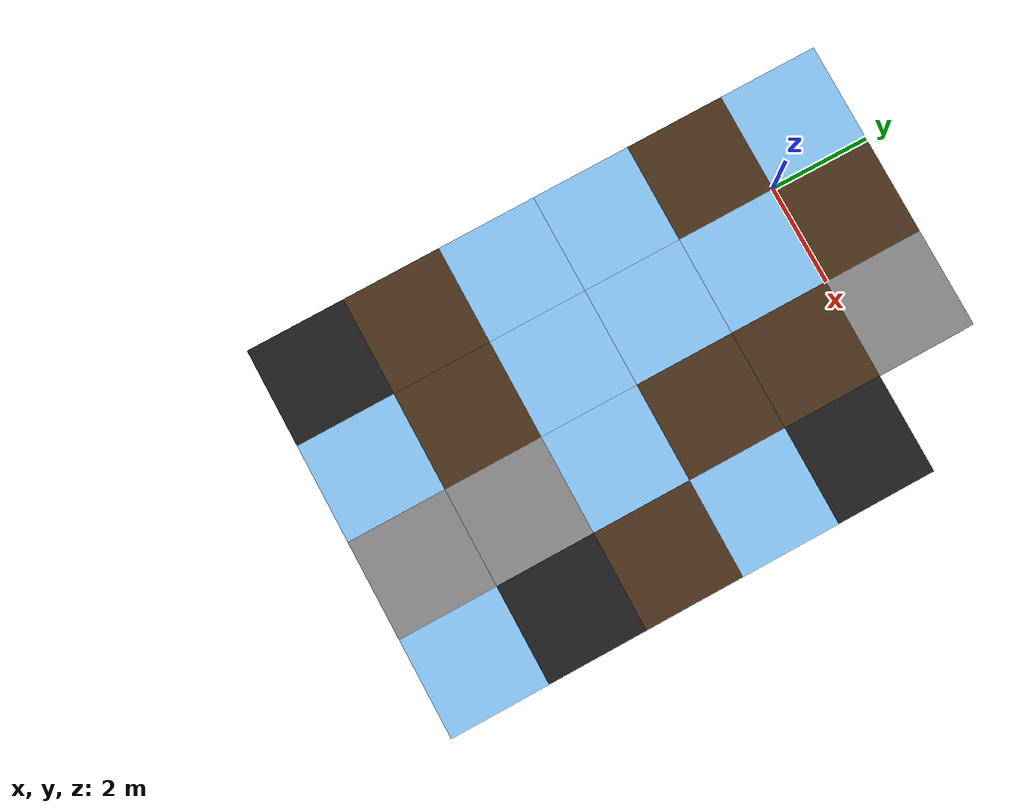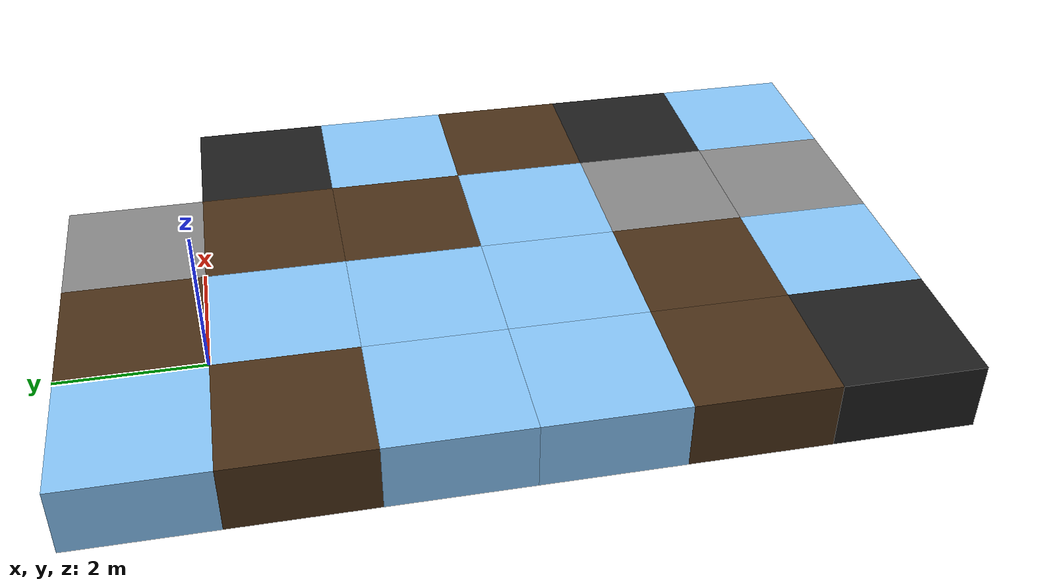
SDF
<sdf version="1.5">
 <world name="squares_example">
  <model name="tile_15_11">
   <static>true</static>
   <pose>-1.000 -9.000 -0.500 0 0 0</pose>
   <link name="link">
    <collision name="col">
     <geometry><box><size>2.0 2.0 1.0</size></box></geometry>
     <surface>
      <friction>
       <ode><mu>0.4</mu><mu2>0.15</mu2><fdir1>1 0 0</fdir1><slip1>0.0</slip1><slip2>0.0</slip2></ode>
       <torsional>
        <coefficient>0.03</coefficient>
        <use_patch_radius>false</use_patch_radius>
        <surface_radius>0.12</surface_radius>
        <ode><slip>0.0</slip></ode>
       </torsional>
      </friction>
      <bounce><restitution_coefficient>0.0</restitution_coefficient><threshold>0.1</threshold></bounce>
      <contact>
       <ode><kp>1000000000.0</kp><kd>1000000.0</kd><max_vel>0.01</max_vel><min_depth>0.0</min_depth></ode>
      </contact>
     </surface>
    </collision>
    <visual name="visual">
     <geometry><box><size>2.0 2.0 1.0</size></box></geometry>
     <material>
      <diffuse>0.12 0.12 0.12 1</diffuse>
      <ambient>0 0 0 0</ambient>
      <specular>0 0 0 1</specular>
      <emissive>0 0 0 1</emissive>
     </material>
    </visual>
   </link>
  </model>
  <model name="tile_16_11">
   <static>true</static>
   <pose>1.000 -9.000 -0.500 0 0 0</pose>
   <link name="link">
    <collision name="col">
     <geometry><box><size>2.0 2.0 1.0</size></box></geometry>
     <surface>
      <friction>
       <ode><mu>0.03</mu><mu2>0.02</mu2><fdir1>1 0 0</fdir1><slip1>0.03</slip1><slip2>0.03</slip2></ode>
       <torsional>
        <coefficient>0.005</coefficient>
        <use_patch_radius>false</use_patch_radius>
        <surface_radius>0.12</surface_radius>
        <ode><slip>0.01</slip></ode>
       </torsional>
      </friction>
      <bounce><restitution_coefficient>0.0</restitution_coefficient><threshold>0.1</threshold></bounce>
      <contact>
       <ode><kp>10000000.0</kp><kd>1000.0</kd><max_vel>0.01</max_vel><min_depth>0.0</min_depth></ode>
      </contact>
     </surface>
    </collision>
    <visual name="visual">
     <geometry><box><size>2.0 2.0 1.0</size></box></geometry>
     <material>
      <diffuse>0.55 0.80 1.00 1</diffuse>
      <ambient>0 0 0 0</ambient>
      <specular>0 0 0 1</specular>
      <emissive>0 0 0 1</emissive>
     </material>
    </visual>
   </link>
  </model>
  <model name="tile_17_11">
   <static>true</static>
   <pose>3.000 -9.000 -0.500 0 0 0</pose>
   <link name="link">
    <collision name="col">
     <geometry><box><size>2.0 2.0 1.0</size></box></geometry>
     <surface>
      <friction>
       <ode><mu>0.8</mu><mu2>0.3</mu2><fdir1>1 0 0</fdir1><slip1>0.0</slip1><slip2>0.0</slip2></ode>
       <torsional>
        <coefficient>0.03</coefficient>
        <use_patch_radius>false</use_patch_radius>
        <surface_radius>0.12</surface_radius>
        <ode><slip>0.0</slip></ode>
       </torsional>
      </friction>
      <bounce><restitution_coefficient>0.0</restitution_coefficient><threshold>0.1</threshold></bounce>
      <contact>
       <ode><kp>10000000000.0</kp><kd>10000000.0</kd><max_vel>0.01</max_vel><min_depth>0.0</min_depth></ode>
      </contact>
     </surface>
    </collision>
    <visual name="visual">
     <geometry><box><size>2.0 2.0 1.0</size></box></geometry>
     <material>
      <diffuse>0.55 0.55 0.55 1</diffuse>
      <ambient>0 0 0 0</ambient>
      <specular>0 0 0 1</specular>
      <emissive>0 0 0 1</emissive>
     </material>
    </visual>
   </link>
  </model>
  <model name="tile_18_11">
   <static>true</static>
   <pose>5.000 -9.000 -0.500 0 0 0</pose>
   <link name="link">
    <collision name="col">
     <geometry><box><size>2.0 2.0 1.0</size></box></geometry>
     <surface>
      <friction>
       <ode><mu>0.03</mu><mu2>0.02</mu2><fdir1>1 0 0</fdir1><slip1>0.03</slip1><slip2>0.03</slip2></ode>
       <torsional>
        <coefficient>0.005</coefficient>
        <use_patch_radius>false</use_patch_radius>
        <surface_radius>0.12</surface_radius>
        <ode><slip>0.01</slip></ode>
       </torsional>
      </friction>
      <bounce><restitution_coefficient>0.0</restitution_coefficient><threshold>0.1</threshold></bounce>
      <contact>
       <ode><kp>10000000.0</kp><kd>1000.0</kd><max_vel>0.01</max_vel><min_depth>0.0</min_depth></ode>
      </contact>
     </surface>
    </collision>
    <visual name="visual">
     <geometry><box><size>2.0 2.0 1.0</size></box></geometry>
     <material>
      <diffuse>0.55 0.80 1.00 1</diffuse>
      <ambient>0 0 0 0</ambient>
      <specular>0 0 0 1</specular>
      <emissive>0 0 0 1</emissive>
     </material>
    </visual>
   </link>
  </model>
  <model name="tile_15_12">
   <static>true</static>
   <pose>-1.000 -7.000 -0.500 0 0 0</pose>
   <link name="link">
    <collision name="col">
     <geometry><box><size>2.0 2.0 1.0</size></box></geometry>
     <surface>
      <friction>
       <ode><mu>0.6</mu><mu2>0.4</mu2><fdir1>1 0 0</fdir1><slip1>0.08</slip1><slip2>0.08</slip2></ode>
       <torsional>
        <coefficient>0.03</coefficient>
        <use_patch_radius>false</use_patch_radius>
        <surface_radius>0.12</surface_radius>
        <ode><slip>0.0</slip></ode>
       </torsional>
      </friction>
      <bounce><restitution_coefficient>0.0</restitution_coefficient><threshold>0.1</threshold></bounce>
      <contact>
       <ode><kp>1000000.0</kp><kd>10000.0</kd><max_vel>0.01</max_vel><min_depth>0.0</min_depth></ode>
      </contact>
     </surface>
    </collision>
    <visual name="visual">
     <geometry><box><size>2.0 2.0 1.0</size></box></geometry>
     <material>
      <diffuse>0.30 0.20 0.10 1</diffuse>
      <ambient>0 0 0 0</ambient>
      <specular>0 0 0 1</specular>
      <emissive>0 0 0 1</emissive>
     </material>
    </visual>
   </link>
  </model>
  <model name="tile_16_12">
   <static>true</static>
   <pose>1.000 -7.000 -0.500 0 0 0</pose>
   <link name="link">
    <collision name="col">
     <geometry><box><size>2.0 2.0 1.0</size></box></geometry>
     <surface>
      <friction>
       <ode><mu>0.6</mu><mu2>0.4</mu2><fdir1>1 0 0</fdir1><slip1>0.08</slip1><slip2>0.08</slip2></ode>
       <torsional>
        <coefficient>0.03</coefficient>
        <use_patch_radius>false</use_patch_radius>
        <surface_radius>0.12</surface_radius>
        <ode><slip>0.0</slip></ode>
       </torsional>
      </friction>
      <bounce><restitution_coefficient>0.0</restitution_coefficient><threshold>0.1</threshold></bounce>
      <contact>
       <ode><kp>1000000.0</kp><kd>10000.0</kd><max_vel>0.01</max_vel><min_depth>0.0</min_depth></ode>
      </contact>
     </surface>
    </collision>
    <visual name="visual">
     <geometry><box><size>2.0 2.0 1.0</size></box></geometry>
     <material>
      <diffuse>0.30 0.20 0.10 1</diffuse>
      <ambient>0 0 0 0</ambient>
      <specular>0 0 0 1</specular>
      <emissive>0 0 0 1</emissive>
     </material>
    </visual>
   </link>
  </model>
  <model name="tile_17_12">
   <static>true</static>
   <pose>3.000 -7.000 -0.500 0 0 0</pose>
   <link name="link">
    <collision name="col">
     <geometry><box><size>2.0 2.0 1.0</size></box></geometry>
     <surface>
      <friction>
       <ode><mu>0.8</mu><mu2>0.3</mu2><fdir1>1 0 0</fdir1><slip1>0.0</slip1><slip2>0.0</slip2></ode>
       <torsional>
        <coefficient>0.03</coefficient>
        <use_patch_radius>false</use_patch_radius>
        <surface_radius>0.12</surface_radius>
        <ode><slip>0.0</slip></ode>
       </torsional>
      </friction>
      <bounce><restitution_coefficient>0.0</restitution_coefficient><threshold>0.1</threshold></bounce>
      <contact>
       <ode><kp>10000000000.0</kp><kd>10000000.0</kd><max_vel>0.01</max_vel><min_depth>0.0</min_depth></ode>
      </contact>
     </surface>
    </collision>
    <visual name="visual">
     <geometry><box><size>2.0 2.0 1.0</size></box></geometry>
     <material>
      <diffuse>0.55 0.55 0.55 1</diffuse>
      <ambient>0 0 0 0</ambient>
      <specular>0 0 0 1</specular>
      <emissive>0 0 0 1</emissive>
     </material>
    </visual>
   </link>
  </model>
  <model name="tile_18_12">
   <static>true</static>
   <pose>5.000 -7.000 -0.500 0 0 0</pose>
   <link name="link">
    <collision name="col">
     <geometry><box><size>2.0 2.0 1.0</size></box></geometry>
     <surface>
      <friction>
       <ode><mu>0.4</mu><mu2>0.15</mu2><fdir1>1 0 0</fdir1><slip1>0.0</slip1><slip2>0.0</slip2></ode>
       <torsional>
        <coefficient>0.03</coefficient>
        <use_patch_radius>false</use_patch_radius>
        <surface_radius>0.12</surface_radius>
        <ode><slip>0.0</slip></ode>
       </torsional>
      </friction>
      <bounce><restitution_coefficient>0.0</restitution_coefficient><threshold>0.1</threshold></bounce>
      <contact>
       <ode><kp>1000000000.0</kp><kd>1000000.0</kd><max_vel>0.01</max_vel><min_depth>0.0</min_depth></ode>
      </contact>
     </surface>
    </collision>
    <visual name="visual">
     <geometry><box><size>2.0 2.0 1.0</size></box></geometry>
     <material>
      <diffuse>0.12 0.12 0.12 1</diffuse>
      <ambient>0 0 0 0</ambient>
      <specular>0 0 0 1</specular>
      <emissive>0 0 0 1</emissive>
     </material>
    </visual>
   </link>
  </model>
  <model name="tile_15_13">
   <static>true</static>
   <pose>-1.000 -5.000 -0.500 0 0 0</pose>
   <link name="link">
    <collision name="col">
     <geometry><box><size>2.0 2.0 1.0</size></box></geometry>
     <surface>
      <friction>
       <ode><mu>0.03</mu><mu2>0.02</mu2><fdir1>1 0 0</fdir1><slip1>0.03</slip1><slip2>0.03</slip2></ode>
       <torsional>
        <coefficient>0.005</coefficient>
        <use_patch_radius>false</use_patch_radius>
        <surface_radius>0.12</surface_radius>
        <ode><slip>0.01</slip></ode>
       </torsional>
      </friction>
      <bounce><restitution_coefficient>0.0</restitution_coefficient><threshold>0.1</threshold></bounce>
      <contact>
       <ode><kp>10000000.0</kp><kd>1000.0</kd><max_vel>0.01</max_vel><min_depth>0.0</min_depth></ode>
      </contact>
     </surface>
    </collision>
    <visual name="visual">
     <geometry><box><size>2.0 2.0 1.0</size></box></geometry>
     <material>
      <diffuse>0.55 0.80 1.00 1</diffuse>
      <ambient>0 0 0 0</ambient>
      <specular>0 0 0 1</specular>
      <emissive>0 0 0 1</emissive>
     </material>
    </visual>
   </link>
  </model>
  <model name="tile_16_13">
   <static>true</static>
   <pose>1.000 -5.000 -0.500 0 0 0</pose>
   <link name="link">
    <collision name="col">
     <geometry><box><size>2.0 2.0 1.0</size></box></geometry>
     <surface>
      <friction>
       <ode><mu>0.03</mu><mu2>0.02</mu2><fdir1>1 0 0</fdir1><slip1>0.03</slip1><slip2>0.03</slip2></ode>
       <torsional>
        <coefficient>0.005</coefficient>
        <use_patch_radius>false</use_patch_radius>
        <surface_radius>0.12</surface_radius>
        <ode><slip>0.01</slip></ode>
       </torsional>
      </friction>
      <bounce><restitution_coefficient>0.0</restitution_coefficient><threshold>0.1</threshold></bounce>
      <contact>
       <ode><kp>10000000.0</kp><kd>1000.0</kd><max_vel>0.01</max_vel><min_depth>0.0</min_depth></ode>
      </contact>
     </surface>
    </collision>
    <visual name="visual">
     <geometry><box><size>2.0 2.0 1.0</size></box></geometry>
     <material>
      <diffuse>0.55 0.80 1.00 1</diffuse>
      <ambient>0 0 0 0</ambient>
      <specular>0 0 0 1</specular>
      <emissive>0 0 0 1</emissive>
     </material>
    </visual>
   </link>
  </model>
  <model name="tile_17_13">
   <static>true</static>
   <pose>3.000 -5.000 -0.500 0 0 0</pose>
   <link name="link">
    <collision name="col">
     <geometry><box><size>2.0 2.0 1.0</size></box></geometry>
     <surface>
      <friction>
       <ode><mu>0.03</mu><mu2>0.02</mu2><fdir1>1 0 0</fdir1><slip1>0.03</slip1><slip2>0.03</slip2></ode>
       <torsional>
        <coefficient>0.005</coefficient>
        <use_patch_radius>false</use_patch_radius>
        <surface_radius>0.12</surface_radius>
        <ode><slip>0.01</slip></ode>
       </torsional>
      </friction>
      <bounce><restitution_coefficient>0.0</restitution_coefficient><threshold>0.1</threshold></bounce>
      <contact>
       <ode><kp>10000000.0</kp><kd>1000.0</kd><max_vel>0.01</max_vel><min_depth>0.0</min_depth></ode>
      </contact>
     </surface>
    </collision>
    <visual name="visual">
     <geometry><box><size>2.0 2.0 1.0</size></box></geometry>
     <material>
      <diffuse>0.55 0.80 1.00 1</diffuse>
      <ambient>0 0 0 0</ambient>
      <specular>0 0 0 1</specular>
      <emissive>0 0 0 1</emissive>
     </material>
    </visual>
   </link>
  </model>
  <model name="tile_18_13">
   <static>true</static>
   <pose>5.000 -5.000 -0.500 0 0 0</pose>
   <link name="link">
    <collision name="col">
     <geometry><box><size>2.0 2.0 1.0</size></box></geometry>
     <surface>
      <friction>
       <ode><mu>0.6</mu><mu2>0.4</mu2><fdir1>1 0 0</fdir1><slip1>0.08</slip1><slip2>0.08</slip2></ode>
       <torsional>
        <coefficient>0.03</coefficient>
        <use_patch_radius>false</use_patch_radius>
        <surface_radius>0.12</surface_radius>
        <ode><slip>0.0</slip></ode>
       </torsional>
      </friction>
      <bounce><restitution_coefficient>0.0</restitution_coefficient><threshold>0.1</threshold></bounce>
      <contact>
       <ode><kp>1000000.0</kp><kd>10000.0</kd><max_vel>0.01</max_vel><min_depth>0.0</min_depth></ode>
      </contact>
     </surface>
    </collision>
    <visual name="visual">
     <geometry><box><size>2.0 2.0 1.0</size></box></geometry>
     <material>
      <diffuse>0.30 0.20 0.10 1</diffuse>
      <ambient>0 0 0 0</ambient>
      <specular>0 0 0 1</specular>
      <emissive>0 0 0 1</emissive>
     </material>
    </visual>
   </link>
  </model>
  <model name="tile_15_14">
   <static>true</static>
   <pose>-1.000 -3.000 -0.500 0 0 0</pose>
   <link name="link">
    <collision name="col">
     <geometry><box><size>2.0 2.0 1.0</size></box></geometry>
     <surface>
      <friction>
       <ode><mu>0.03</mu><mu2>0.02</mu2><fdir1>1 0 0</fdir1><slip1>0.03</slip1><slip2>0.03</slip2></ode>
       <torsional>
        <coefficient>0.005</coefficient>
        <use_patch_radius>false</use_patch_radius>
        <surface_radius>0.12</surface_radius>
        <ode><slip>0.01</slip></ode>
       </torsional>
      </friction>
      <bounce><restitution_coefficient>0.0</restitution_coefficient><threshold>0.1</threshold></bounce>
      <contact>
       <ode><kp>10000000.0</kp><kd>1000.0</kd><max_vel>0.01</max_vel><min_depth>0.0</min_depth></ode>
      </contact>
     </surface>
    </collision>
    <visual name="visual">
     <geometry><box><size>2.0 2.0 1.0</size></box></geometry>
     <material>
      <diffuse>0.55 0.80 1.00 1</diffuse>
      <ambient>0 0 0 0</ambient>
      <specular>0 0 0 1</specular>
      <emissive>0 0 0 1</emissive>
     </material>
    </visual>
   </link>
  </model>
  <model name="tile_16_14">
   <static>true</static>
   <pose>1.000 -3.000 -0.500 0 0 0</pose>
   <link name="link">
    <collision name="col">
     <geometry><box><size>2.0 2.0 1.0</size></box></geometry>
     <surface>
      <friction>
       <ode><mu>0.03</mu><mu2>0.02</mu2><fdir1>1 0 0</fdir1><slip1>0.03</slip1><slip2>0.03</slip2></ode>
       <torsional>
        <coefficient>0.005</coefficient>
        <use_patch_radius>false</use_patch_radius>
        <surface_radius>0.12</surface_radius>
        <ode><slip>0.01</slip></ode>
       </torsional>
      </friction>
      <bounce><restitution_coefficient>0.0</restitution_coefficient><threshold>0.1</threshold></bounce>
      <contact>
       <ode><kp>10000000.0</kp><kd>1000.0</kd><max_vel>0.01</max_vel><min_depth>0.0</min_depth></ode>
      </contact>
     </surface>
    </collision>
    <visual name="visual">
     <geometry><box><size>2.0 2.0 1.0</size></box></geometry>
     <material>
      <diffuse>0.55 0.80 1.00 1</diffuse>
      <ambient>0 0 0 0</ambient>
      <specular>0 0 0 1</specular>
      <emissive>0 0 0 1</emissive>
     </material>
    </visual>
   </link>
  </model>
  <model name="tile_17_14">
   <static>true</static>
   <pose>3.000 -3.000 -0.500 0 0 0</pose>
   <link name="link">
    <collision name="col">
     <geometry><box><size>2.0 2.0 1.0</size></box></geometry>
     <surface>
      <friction>
       <ode><mu>0.6</mu><mu2>0.4</mu2><fdir1>1 0 0</fdir1><slip1>0.08</slip1><slip2>0.08</slip2></ode>
       <torsional>
        <coefficient>0.03</coefficient>
        <use_patch_radius>false</use_patch_radius>
        <surface_radius>0.12</surface_radius>
        <ode><slip>0.0</slip></ode>
       </torsional>
      </friction>
      <bounce><restitution_coefficient>0.0</restitution_coefficient><threshold>0.1</threshold></bounce>
      <contact>
       <ode><kp>1000000.0</kp><kd>10000.0</kd><max_vel>0.01</max_vel><min_depth>0.0</min_depth></ode>
      </contact>
     </surface>
    </collision>
    <visual name="visual">
     <geometry><box><size>2.0 2.0 1.0</size></box></geometry>
     <material>
      <diffuse>0.30 0.20 0.10 1</diffuse>
      <ambient>0 0 0 0</ambient>
      <specular>0 0 0 1</specular>
      <emissive>0 0 0 1</emissive>
     </material>
    </visual>
   </link>
  </model>
  <model name="tile_18_14">
   <static>true</static>
   <pose>5.000 -3.000 -0.500 0 0 0</pose>
   <link name="link">
    <collision name="col">
     <geometry><box><size>2.0 2.0 1.0</size></box></geometry>
     <surface>
      <friction>
       <ode><mu>0.03</mu><mu2>0.02</mu2><fdir1>1 0 0</fdir1><slip1>0.03</slip1><slip2>0.03</slip2></ode>
       <torsional>
        <coefficient>0.005</coefficient>
        <use_patch_radius>false</use_patch_radius>
        <surface_radius>0.12</surface_radius>
        <ode><slip>0.01</slip></ode>
       </torsional>
      </friction>
      <bounce><restitution_coefficient>0.0</restitution_coefficient><threshold>0.1</threshold></bounce>
      <contact>
       <ode><kp>10000000.0</kp><kd>1000.0</kd><max_vel>0.01</max_vel><min_depth>0.0</min_depth></ode>
      </contact>
     </surface>
    </collision>
    <visual name="visual">
     <geometry><box><size>2.0 2.0 1.0</size></box></geometry>
     <material>
      <diffuse>0.55 0.80 1.00 1</diffuse>
      <ambient>0 0 0 0</ambient>
      <specular>0 0 0 1</specular>
      <emissive>0 0 0 1</emissive>
     </material>
    </visual>
   </link>
  </model>
  <model name="tile_15_15">
   <static>true</static>
   <pose>-1.000 -1.000 -0.500 0 0 0</pose>
   <link name="link">
    <collision name="col">
     <geometry><box><size>2.0 2.0 1.0</size></box></geometry>
     <surface>
      <friction>
       <ode><mu>0.6</mu><mu2>0.4</mu2><fdir1>1 0 0</fdir1><slip1>0.08</slip1><slip2>0.08</slip2></ode>
       <torsional>
        <coefficient>0.03</coefficient>
        <use_patch_radius>false</use_patch_radius>
        <surface_radius>0.12</surface_radius>
        <ode><slip>0.0</slip></ode>
       </torsional>
      </friction>
      <bounce><restitution_coefficient>0.0</restitution_coefficient><threshold>0.1</threshold></bounce>
      <contact>
       <ode><kp>1000000.0</kp><kd>10000.0</kd><max_vel>0.01</max_vel><min_depth>0.0</min_depth></ode>
      </contact>
     </surface>
    </collision>
    <visual name="visual">
     <geometry><box><size>2.0 2.0 1.0</size></box></geometry>
     <material>
      <diffuse>0.30 0.20 0.10 1</diffuse>
      <ambient>0 0 0 0</ambient>
      <specular>0 0 0 1</specular>
      <emissive>0 0 0 1</emissive>
     </material>
    </visual>
   </link>
  </model>
  <model name="tile_16_15">
   <static>true</static>
   <pose>1.000 -1.000 -0.500 0 0 0</pose>
   <link name="link">
    <collision name="col">
     <geometry><box><size>2.0 2.0 1.0</size></box></geometry>
     <surface>
      <friction>
       <ode><mu>0.03</mu><mu2>0.02</mu2><fdir1>1 0 0</fdir1><slip1>0.03</slip1><slip2>0.03</slip2></ode>
       <torsional>
        <coefficient>0.005</coefficient>
        <use_patch_radius>false</use_patch_radius>
        <surface_radius>0.12</surface_radius>
        <ode><slip>0.01</slip></ode>
       </torsional>
      </friction>
      <bounce><restitution_coefficient>0.0</restitution_coefficient><threshold>0.1</threshold></bounce>
      <contact>
       <ode><kp>10000000.0</kp><kd>1000.0</kd><max_vel>0.01</max_vel><min_depth>0.0</min_depth></ode>
      </contact>
     </surface>
    </collision>
    <visual name="visual">
     <geometry><box><size>2.0 2.0 1.0</size></box></geometry>
     <material>
      <diffuse>0.55 0.80 1.00 1</diffuse>
      <ambient>0 0 0 0</ambient>
      <specular>0 0 0 1</specular>
      <emissive>0 0 0 1</emissive>
     </material>
    </visual>
   </link>
  </model>
  <model name="tile_17_15">
   <static>true</static>
   <pose>3.000 -1.000 -0.500 0 0 0</pose>
   <link name="link">
    <collision name="col">
     <geometry><box><size>2.0 2.0 1.0</size></box></geometry>
     <surface>
      <friction>
       <ode><mu>0.6</mu><mu2>0.4</mu2><fdir1>1 0 0</fdir1><slip1>0.08</slip1><slip2>0.08</slip2></ode>
       <torsional>
        <coefficient>0.03</coefficient>
        <use_patch_radius>false</use_patch_radius>
        <surface_radius>0.12</surface_radius>
        <ode><slip>0.0</slip></ode>
       </torsional>
      </friction>
      <bounce><restitution_coefficient>0.0</restitution_coefficient><threshold>0.1</threshold></bounce>
      <contact>
       <ode><kp>1000000.0</kp><kd>10000.0</kd><max_vel>0.01</max_vel><min_depth>0.0</min_depth></ode>
      </contact>
     </surface>
    </collision>
    <visual name="visual">
     <geometry><box><size>2.0 2.0 1.0</size></box></geometry>
     <material>
      <diffuse>0.30 0.20 0.10 1</diffuse>
      <ambient>0 0 0 0</ambient>
      <specular>0 0 0 1</specular>
      <emissive>0 0 0 1</emissive>
     </material>
    </visual>
   </link>
  </model>
  <model name="tile_18_15">
   <static>true</static>
   <pose>5.000 -1.000 -0.500 0 0 0</pose>
   <link name="link">
    <collision name="col">
     <geometry><box><size>2.0 2.0 1.0</size></box></geometry>
     <surface>
      <friction>
       <ode><mu>0.4</mu><mu2>0.15</mu2><fdir1>1 0 0</fdir1><slip1>0.0</slip1><slip2>0.0</slip2></ode>
       <torsional>
        <coefficient>0.03</coefficient>
        <use_patch_radius>false</use_patch_radius>
        <surface_radius>0.12</surface_radius>
        <ode><slip>0.0</slip></ode>
       </torsional>
      </friction>
      <bounce><restitution_coefficient>0.0</restitution_coefficient><threshold>0.1</threshold></bounce>
      <contact>
       <ode><kp>1000000000.0</kp><kd>1000000.0</kd><max_vel>0.01</max_vel><min_depth>0.0</min_depth></ode>
      </contact>
     </surface>
    </collision>
    <visual name="visual">
     <geometry><box><size>2.0 2.0 1.0</size></box></geometry>
     <material>
      <diffuse>0.12 0.12 0.12 1</diffuse>
      <ambient>0 0 0 0</ambient>
      <specular>0 0 0 1</specular>
      <emissive>0 0 0 1</emissive>
     </material>
    </visual>
   </link>
  </model>
  <model name="tile_15_16">
   <static>true</static>
   <pose>-1.000 1.000 -0.500 0 0 0</pose>
   <link name="link">
    <collision name="col">
     <geometry><box><size>2.0 2.0 1.0</size></box></geometry>
     <surface>
      <friction>
       <ode><mu>0.03</mu><mu2>0.02</mu2><fdir1>1 0 0</fdir1><slip1>0.03</slip1><slip2>0.03</slip2></ode>
       <torsional>
        <coefficient>0.005</coefficient>
        <use_patch_radius>false</use_patch_radius>
        <surface_radius>0.12</surface_radius>
        <ode><slip>0.01</slip></ode>
       </torsional>
      </friction>
      <bounce><restitution_coefficient>0.0</restitution_coefficient><threshold>0.1</threshold></bounce>
      <contact>
       <ode><kp>10000000.0</kp><kd>1000.0</kd><max_vel>0.01</max_vel><min_depth>0.0</min_depth></ode>
      </contact>
     </surface>
    </collision>
    <visual name="visual">
     <geometry><box><size>2.0 2.0 1.0</size></box></geometry>
     <material>
      <diffuse>0.55 0.80 1.00 1</diffuse>
      <ambient>0 0 0 0</ambient>
      <specular>0 0 0 1</specular>
      <emissive>0 0 0 1</emissive>
     </material>
    </visual>
   </link>
  </model>
  <model name="tile_16_16">
   <static>true</static>
   <pose>1.000 1.000 -0.500 0 0 0</pose>
   <link name="link">
    <collision name="col">
     <geometry><box><size>2.0 2.0 1.0</size></box></geometry>
     <surface>
      <friction>
       <ode><mu>0.6</mu><mu2>0.4</mu2><fdir1>1 0 0</fdir1><slip1>0.08</slip1><slip2>0.08</slip2></ode>
       <torsional>
        <coefficient>0.03</coefficient>
        <use_patch_radius>false</use_patch_radius>
        <surface_radius>0.12</surface_radius>
        <ode><slip>0.0</slip></ode>
       </torsional>
      </friction>
      <bounce><restitution_coefficient>0.0</restitution_coefficient><threshold>0.1</threshold></bounce>
      <contact>
       <ode><kp>1000000.0</kp><kd>10000.0</kd><max_vel>0.01</max_vel><min_depth>0.0</min_depth></ode>
      </contact>
     </surface>
    </collision>
    <visual name="visual">
     <geometry><box><size>2.0 2.0 1.0</size></box></geometry>
     <material>
      <diffuse>0.30 0.20 0.10 1</diffuse>
      <ambient>0 0 0 0</ambient>
      <specular>0 0 0 1</specular>
      <emissive>0 0 0 1</emissive>
     </material>
    </visual>
   </link>
  </model>
  <model name="tile_17_16">
   <static>true</static>
   <pose>3.000 1.000 -0.500 0 0 0</pose>
   <link name="link">
    <collision name="col">
     <geometry><box><size>2.0 2.0 1.0</size></box></geometry>
     <surface>
      <friction>
       <ode><mu>0.8</mu><mu2>0.3</mu2><fdir1>1 0 0</fdir1><slip1>0.0</slip1><slip2>0.0</slip2></ode>
       <torsional>
        <coefficient>0.03</coefficient>
        <use_patch_radius>false</use_patch_radius>
        <surface_radius>0.12</surface_radius>
        <ode><slip>0.0</slip></ode>
       </torsional>
      </friction>
      <bounce><restitution_coefficient>0.0</restitution_coefficient><threshold>0.1</threshold></bounce>
      <contact>
       <ode><kp>10000000000.0</kp><kd>10000000.0</kd><max_vel>0.01</max_vel><min_depth>0.0</min_depth></ode>
      </contact>
     </surface>
    </collision>
    <visual name="visual">
     <geometry><box><size>2.0 2.0 1.0</size></box></geometry>
     <material>
      <diffuse>0.55 0.55 0.55 1</diffuse>
      <ambient>0 0 0 0</ambient>
      <specular>0 0 0 1</specular>
      <emissive>0 0 0 1</emissive>
     </material>
    </visual>
   </link>
  </model>
 </world>
</sdf>
